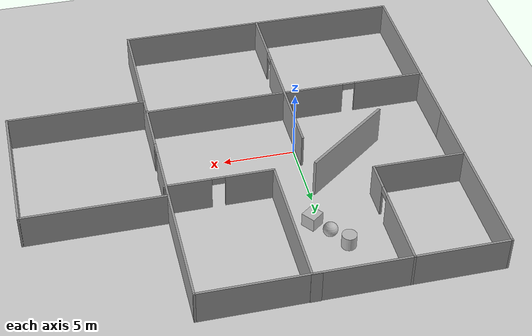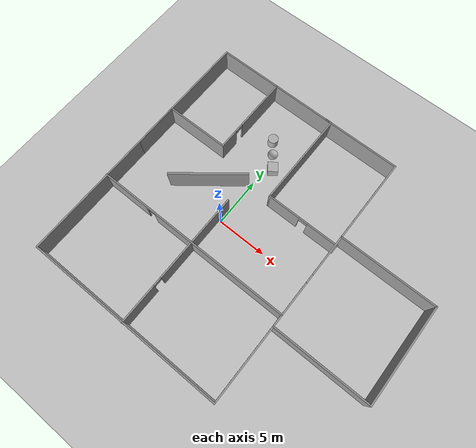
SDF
<sdf version="1.6">
 <world name="default">
  <light name="sun" type="directional">
   <pose>0 0 10 0 -0 0</pose>
   <diffuse>0.8 0.8 0.8 1</diffuse>
   <specular>0.1 0.1 0.1 1</specular>
   <attenuation>
    <range>1000</range>
    <constant>0.9</constant>
    <linear>0.01</linear>
    <quadratic>0.001</quadratic>
   </attenuation>
   <direction>-0.5 0.5 -1</direction>
  </light>
  <model name="ground_plane">
   <static>1</static>
   <link name="link">
    <collision name="collision">
     <geometry><plane><normal>0 0 1</normal><size>100 100</size></plane></geometry>
     <surface><friction><ode><mu>100</mu><mu2>50</mu2></ode></friction></surface>
    </collision>
    <visual name="visual">
     <cast_shadows>0</cast_shadows>
     <geometry><plane><normal>0 0 1</normal><size>100 100</size></plane></geometry>
     <material>
      <script><uri>file://media/materials/scripts/gazebo.material</uri><name>Gazebo/Grey</name></script>
     </material>
    </visual>
   </link>
  </model>
  <gravity>0 0 -9.8</gravity>
  <magnetic_field>6e-06 2.3e-05 -4.2e-05</magnetic_field>
  <atmosphere type="adiabatic"/>
  <physics name="default_physics" default="0" type="ode">
   <max_step_size>0.001</max_step_size>
   <real_time_factor>1</real_time_factor>
   <real_time_update_rate>1000</real_time_update_rate>
  </physics>
  <scene><ambient>0.4 0.4 0.4 1</ambient><background>0.7 0.7 0.7 1</background><shadows>1</shadows></scene>
  <spherical_coordinates>
   <surface_model>EARTH_WGS84</surface_model>
   <latitude_deg>0</latitude_deg>
   <longitude_deg>0</longitude_deg>
   <elevation>0</elevation>
   <heading_deg>0</heading_deg>
  </spherical_coordinates>
  <model name="textured_shapes">
   <pose>-0.307519 8.3938 0.5 0 -0 0.64384</pose>
   <link name="box">
    <pose>0 -1.5 0 0 -0 0</pose>
    <collision name="collision"><geometry><box><size>1 1 1</size></box></geometry></collision>
    <visual name="visual">
     <geometry><box><size>1 1 1</size></box></geometry>
     <material>
      <script>
       <uri>model://textured_shapes/materials/scripts</uri>
       <uri>model://textured_shapes/materials/textures</uri>
       <name>TexturedShape/Squares</name>
      </script>
     </material>
    </visual>
    <inertial>
     <inertia><ixx>1</ixx><ixy>0</ixy><ixz>0</ixz><iyy>1</iyy><iyz>0</iyz><izz>1</izz></inertia>
     <mass>1</mass>
    </inertial>
   </link>
   <link name="sphere">
    <collision name="collision"><geometry><sphere><radius>0.5</radius></sphere></geometry></collision>
    <visual name="visual">
     <geometry><sphere><radius>0.5</radius></sphere></geometry>
     <material>
      <script>
       <uri>model://textured_shapes/materials/scripts</uri>
       <uri>model://textured_shapes/materials/textures</uri>
       <name>TexturedShape/Squares</name>
      </script>
     </material>
    </visual>
    <inertial>
     <inertia><ixx>1</ixx><ixy>0</ixy><ixz>0</ixz><iyy>1</iyy><iyz>0</iyz><izz>1</izz></inertia>
     <mass>1</mass>
    </inertial>
   </link>
   <link name="cylinder">
    <pose>0 1.5 0 0 -0 0</pose>
    <collision name="collision">
     <geometry><cylinder><radius>0.5</radius><length>1</length></cylinder></geometry>
    </collision>
    <visual name="visual">
     <geometry><cylinder><radius>0.5</radius><length>1</length></cylinder></geometry>
     <material>
      <script>
       <uri>model://textured_shapes/materials/scripts</uri>
       <uri>model://textured_shapes/materials/textures</uri>
       <name>TexturedShape/Squares</name>
      </script>
     </material>
    </visual>
    <inertial>
     <inertia><ixx>1</ixx><ixy>0</ixy><ixz>0</ixz><iyy>1</iyy><iyz>0</iyz><izz>1</izz></inertia>
     <mass>1</mass>
    </inertial>
   </link>
  </model>
  <model name="grey_wall">
   <static>1</static>
   <link name="link">
    <pose>0 0 1.4 0 -0 0</pose>
    <collision name="collision"><geometry><box><size>7.5 0.2 2.8</size></box></geometry></collision>
    <visual name="visual">
     <cast_shadows>0</cast_shadows>
     <geometry><box><size>7.5 0.2 2.8</size></box></geometry>
     <material>
      <script>
       <uri>model://grey_wall/materials/scripts</uri>
       <uri>model://grey_wall/materials/textures</uri>
       <name>vrc/grey_wall</name>
      </script>
     </material>
    </visual>
   </link>
   <pose>-3.18514 2.23987 4e-06 0.01417 -0.022146 0.663578</pose>
  </model>
  <model name="White_walls_and_doors">
   <pose>4.437 0.6178 0 0 -0 0</pose>
   <link name="Wall_18">
    <collision name="Wall_18_Collision">
     <geometry><box><size>20.25 0.15 2.5</size></box></geometry>
     <pose>0 0 1.25 0 -0 0</pose>
    </collision>
    <visual name="Wall_18_Visual">
     <pose>0 0 1.25 0 -0 0</pose>
     <geometry><box><size>20.25 0.15 2.5</size></box></geometry>
     <material>
      <script><uri>file://media/materials/scripts/gazebo.material</uri><name>Gazebo/Grey</name></script>
      <ambient>1 1 1 1</ambient>
     </material>
    </visual>
    <pose>-4.80227 -13.0434 0 0 -0 3.14159</pose>
   </link>
   <link name="Wall_19">
    <collision name="Wall_19_Collision">
     <geometry><box><size>26.25 0.15 2.5</size></box></geometry>
     <pose>0 0 1.25 0 -0 0</pose>
    </collision>
    <visual name="Wall_19_Visual">
     <pose>0 0 1.25 0 -0 0</pose>
     <geometry><box><size>26.25 0.15 2.5</size></box></geometry>
     <material>
      <script><uri>file://media/materials/scripts/gazebo.material</uri><name>Gazebo/Grey</name></script>
      <ambient>1 1 1 1</ambient>
     </material>
    </visual>
    <pose>-14.8523 0.006615 0 0 -0 1.5708</pose>
   </link>
   <link name="Wall_20">
    <collision name="Wall_20_Collision">
     <geometry><box><size>6.5 0.15 2.5</size></box></geometry>
     <pose>0 0 1.25 0 -0 0</pose>
    </collision>
    <visual name="Wall_20_Visual">
     <pose>0 0 1.25 0 -0 0</pose>
     <geometry><box><size>6.5 0.15 2.5</size></box></geometry>
     <material>
      <script><uri>file://media/materials/scripts/gazebo.material</uri><name>Gazebo/Grey</name></script>
      <ambient>1 1 1 1</ambient>
     </material>
    </visual>
    <pose>-11.6773 13.0566 0 0 -0 0</pose>
   </link>
   <link name="Wall_21">
    <pose>-8.50227 8.88162 0 0 0 -1.5708</pose>
    <visual name="Wall_21_Visual_0">
     <pose>-1.47112 0 1.25 0 -0 0</pose>
     <geometry><box><size>5.55776 0.15 2.5</size></box></geometry>
     <material>
      <script><uri>file://media/materials/scripts/gazebo.material</uri><name>Gazebo/Grey</name></script>
      <ambient>1 1 1 1</ambient>
     </material>
    </visual>
    <collision name="Wall_21_Collision_0">
     <geometry><box><size>5.55776 0.15 2.5</size></box></geometry>
     <pose>-1.47112 0 1.25 0 -0 0</pose>
    </collision>
    <visual name="Wall_21_Visual_1">
     <pose>3.22888 0 1.25 0 -0 0</pose>
     <geometry><box><size>2.04224 0.15 2.5</size></box></geometry>
     <material>
      <script><uri>file://media/materials/scripts/gazebo.material</uri><name>Gazebo/Grey</name></script>
      <ambient>1 1 1 1</ambient>
     </material>
    </visual>
    <collision name="Wall_21_Collision_1">
     <geometry><box><size>2.04224 0.15 2.5</size></box></geometry>
     <pose>3.22888 0 1.25 0 -0 0</pose>
    </collision>
    <visual name="Wall_21_Visual_2">
     <pose>1.75776 0 2.25 0 -0 0</pose>
     <geometry><box><size>0.9 0.15 0.5</size></box></geometry>
     <material>
      <script><uri>file://media/materials/scripts/gazebo.material</uri><name>Gazebo/Grey</name></script>
      <ambient>1 1 1 1</ambient>
     </material>
    </visual>
    <collision name="Wall_21_Collision_2">
     <geometry><box><size>0.9 0.15 0.5</size></box></geometry>
     <pose>1.75776 0 2.25 0 -0 0</pose>
    </collision>
   </link>
   <link name="Wall_22">
    <collision name="Wall_22_Collision">
     <geometry><box><size>6.5 0.15 2.5</size></box></geometry>
     <pose>0 0 1.25 0 -0 0</pose>
    </collision>
    <visual name="Wall_22_Visual">
     <pose>0 0 1.25 0 -0 0</pose>
     <geometry><box><size>6.5 0.15 2.5</size></box></geometry>
     <material>
      <script><uri>file://media/materials/scripts/gazebo.material</uri><name>Gazebo/Grey</name></script>
      <ambient>1 1 1 1</ambient>
     </material>
    </visual>
    <pose>-11.6773 4.70662 0 0 -0 3.14159</pose>
   </link>
   <link name="Wall_23">
    <collision name="Wall_23_Collision">
     <geometry><box><size>9 0.15 2.5</size></box></geometry>
     <pose>0 0 1.25 0 -0 0</pose>
    </collision>
    <visual name="Wall_23_Visual">
     <pose>0 0 1.25 0 -0 0</pose>
     <geometry><box><size>9 0.15 2.5</size></box></geometry>
     <material>
      <script><uri>file://media/materials/scripts/gazebo.material</uri><name>Gazebo/Grey</name></script>
      <ambient>1 1 1 1</ambient>
     </material>
    </visual>
    <pose>-14.8523 0.281615 0 0 0 -1.5708</pose>
   </link>
   <link name="Wall_31">
    <pose>5.24773 0.006615 0 0 -0 1.5708</pose>
    <visual name="Wall_31_Visual_0">
     <pose>-6.97193 0 1.25 0 -0 0</pose>
     <geometry><box><size>12.3061 0.15 2.5</size></box></geometry>
     <material>
      <script><uri>file://media/materials/scripts/gazebo.material</uri><name>Gazebo/Grey</name></script>
      <ambient>1 1 1 1</ambient>
     </material>
    </visual>
    <collision name="Wall_31_Collision_0">
     <geometry><box><size>12.3061 0.15 2.5</size></box></geometry>
     <pose>-6.97193 0 1.25 0 -0 0</pose>
    </collision>
    <visual name="Wall_31_Visual_1">
     <pose>6.60307 0 1.25 0 -0 0</pose>
     <geometry><box><size>13.0439 0.15 2.5</size></box></geometry>
     <material>
      <script><uri>file://media/materials/scripts/gazebo.material</uri><name>Gazebo/Grey</name></script>
      <ambient>1 1 1 1</ambient>
     </material>
    </visual>
    <collision name="Wall_31_Collision_1">
     <geometry><box><size>13.0439 0.15 2.5</size></box></geometry>
     <pose>6.60307 0 1.25 0 -0 0</pose>
    </collision>
    <visual name="Wall_31_Visual_2">
     <pose>-0.368859 0 2.25 0 -0 0</pose>
     <geometry><box><size>0.9 0.15 0.5</size></box></geometry>
     <material>
      <script><uri>file://media/materials/scripts/gazebo.material</uri><name>Gazebo/Grey</name></script>
      <ambient>1 1 1 1</ambient>
     </material>
    </visual>
    <collision name="Wall_31_Collision_2">
     <geometry><box><size>0.9 0.15 0.5</size></box></geometry>
     <pose>-0.368859 0 2.25 0 -0 0</pose>
    </collision>
   </link>
   <link name="Wall_33">
    <collision name="Wall_33_Collision">
     <geometry><box><size>13.9 0.15 2.5</size></box></geometry>
     <pose>0 0 1.25 0 -0 0</pose>
    </collision>
    <visual name="Wall_33_Visual">
     <pose>0 0 1.25 0 -0 0</pose>
     <geometry><box><size>13.9 0.15 2.5</size></box></geometry>
     <material>
      <script><uri>file://media/materials/scripts/gazebo.material</uri><name>Gazebo/Grey</name></script>
      <ambient>1 1 1 1</ambient>
     </material>
    </visual>
    <pose>-1.62727 13.0566 0 0 -0 0</pose>
   </link>
   <link name="Wall_35">
    <collision name="Wall_35_Collision">
     <geometry><box><size>0.75 0.15 2.5</size></box></geometry>
     <pose>0 0 1.25 0 -0 0</pose>
    </collision>
    <visual name="Wall_35_Visual">
     <pose>0 0 1.25 0 -0 0</pose>
     <geometry><box><size>0.75 0.15 2.5</size></box></geometry>
     <material>
      <script><uri>file://media/materials/scripts/gazebo.material</uri><name>Gazebo/Grey</name></script>
      <ambient>1 1 1 1</ambient>
     </material>
    </visual>
    <pose>-2.2932 13.0776 0 0 -0 0</pose>
   </link>
   <link name="Wall_36">
    <collision name="Wall_36_Collision">
     <geometry><box><size>9.75 0.15 2.5</size></box></geometry>
     <pose>0 0 1.25 0 -0 0</pose>
    </collision>
    <visual name="Wall_36_Visual">
     <pose>0 0 1.25 0 -0 0</pose>
     <geometry><box><size>9.75 0.15 2.5</size></box></geometry>
     <material>
      <script><uri>file://media/materials/scripts/gazebo.material</uri><name>Gazebo/Grey</name></script>
      <ambient>1 1 1 1</ambient>
     </material>
    </visual>
    <pose>-1.9932 8.27759 0 0 0 -1.5708</pose>
   </link>
   <link name="Wall_37">
    <pose>1.6818 3.47759 0 0 -0 0</pose>
    <visual name="Wall_37_Visual_0">
     <pose>-2.06159 0 1.25 0 -0 0</pose>
     <geometry><box><size>3.37682 0.15 2.5</size></box></geometry>
     <material>
      <script><uri>file://media/materials/scripts/gazebo.material</uri><name>Gazebo/Grey</name></script>
      <ambient>1 1 1 1</ambient>
     </material>
    </visual>
    <collision name="Wall_37_Collision_0">
     <geometry><box><size>3.37682 0.15 2.5</size></box></geometry>
     <pose>-2.06159 0 1.25 0 -0 0</pose>
    </collision>
    <visual name="Wall_37_Visual_1">
     <pose>2.13841 0 1.25 0 -0 0</pose>
     <geometry><box><size>3.22318 0.15 2.5</size></box></geometry>
     <material>
      <script><uri>file://media/materials/scripts/gazebo.material</uri><name>Gazebo/Grey</name></script>
      <ambient>1 1 1 1</ambient>
     </material>
    </visual>
    <collision name="Wall_37_Collision_1">
     <geometry><box><size>3.22318 0.15 2.5</size></box></geometry>
     <pose>2.13841 0 1.25 0 -0 0</pose>
    </collision>
    <visual name="Wall_37_Visual_2">
     <pose>0.076818 0 2.25 0 -0 0</pose>
     <geometry><box><size>0.9 0.15 0.5</size></box></geometry>
     <material>
      <script><uri>file://media/materials/scripts/gazebo.material</uri><name>Gazebo/Grey</name></script>
      <ambient>1 1 1 1</ambient>
     </material>
    </visual>
    <collision name="Wall_37_Collision_2">
     <geometry><box><size>0.9 0.15 0.5</size></box></geometry>
     <pose>0.076818 0 2.25 0 -0 0</pose>
    </collision>
   </link>
   <link name="Wall_39">
    <collision name="Wall_39_Collision">
     <geometry><box><size>9.75 0.15 2.5</size></box></geometry>
     <pose>0 0 1.25 0 -0 0</pose>
    </collision>
    <visual name="Wall_39_Visual">
     <pose>0 0 1.25 0 -0 0</pose>
     <geometry><box><size>9.75 0.15 2.5</size></box></geometry>
     <material>
      <script><uri>file://media/materials/scripts/gazebo.material</uri><name>Gazebo/Grey</name></script>
      <ambient>1 1 1 1</ambient>
     </material>
    </visual>
    <pose>10.0814 4.38553 0 0 -0 0</pose>
   </link>
   <link name="Wall_40">
    <collision name="Wall_40_Collision">
     <geometry><box><size>10 0.15 2.5</size></box></geometry>
     <pose>0 0 1.25 0 -0 0</pose>
    </collision>
    <visual name="Wall_40_Visual">
     <pose>0 0 1.25 0 -0 0</pose>
     <geometry><box><size>10 0.15 2.5</size></box></geometry>
     <material>
      <script><uri>file://media/materials/scripts/gazebo.material</uri><name>Gazebo/Grey</name></script>
      <ambient>1 1 1 1</ambient>
     </material>
    </visual>
    <pose>14.8814 -0.539473 0 0 0 -1.5708</pose>
   </link>
   <link name="Wall_41">
    <collision name="Wall_41_Collision">
     <geometry><box><size>9.75 0.15 2.5</size></box></geometry>
     <pose>0 0 1.25 0 -0 0</pose>
    </collision>
    <visual name="Wall_41_Visual">
     <pose>0 0 1.25 0 -0 0</pose>
     <geometry><box><size>9.75 0.15 2.5</size></box></geometry>
     <material>
      <script><uri>file://media/materials/scripts/gazebo.material</uri><name>Gazebo/Grey</name></script>
      <ambient>1 1 1 1</ambient>
     </material>
    </visual>
    <pose>10.0814 -5.46447 0 0 -0 3.14159</pose>
   </link>
   <link name="Wall_43">
    <collision name="Wall_43_Collision">
     <geometry><box><size>0.25 0.15 2.5</size></box></geometry>
     <pose>0 0 1.25 0 -0 0</pose>
    </collision>
    <visual name="Wall_43_Visual">
     <pose>0 0 1.25 0 -0 0</pose>
     <geometry><box><size>0.25 0.15 2.5</size></box></geometry>
     <material>
      <script><uri>file://media/materials/scripts/gazebo.material</uri><name>Gazebo/Grey</name></script>
      <ambient>1 1 1 1</ambient>
     </material>
    </visual>
    <pose>5.21856 -4.31567 0 0 -0 1.5708</pose>
   </link>
   <link name="Wall_44">
    <pose>-4.83144 -4.26567 0 0 -0 3.14159</pose>
    <visual name="Wall_44_Visual_0">
     <pose>-2.9883 0 1.25 0 -0 0</pose>
     <geometry><box><size>14.2734 0.15 2.5</size></box></geometry>
     <material>
      <script><uri>file://media/materials/scripts/gazebo.material</uri><name>Gazebo/Grey</name></script>
      <ambient>1 1 1 1</ambient>
     </material>
    </visual>
    <collision name="Wall_44_Collision_0">
     <geometry><box><size>14.2734 0.15 2.5</size></box></geometry>
     <pose>-2.9883 0 1.25 0 -0 0</pose>
    </collision>
    <visual name="Wall_44_Visual_1">
     <pose>7.5867 0 1.25 0 -0 0</pose>
     <geometry><box><size>5.07659 0.15 2.5</size></box></geometry>
     <material>
      <script><uri>file://media/materials/scripts/gazebo.material</uri><name>Gazebo/Grey</name></script>
      <ambient>1 1 1 1</ambient>
     </material>
    </visual>
    <collision name="Wall_44_Collision_1">
     <geometry><box><size>5.07659 0.15 2.5</size></box></geometry>
     <pose>7.5867 0 1.25 0 -0 0</pose>
    </collision>
    <visual name="Wall_44_Visual_2">
     <pose>4.59841 0 2.25 0 -0 0</pose>
     <geometry><box><size>0.9 0.15 0.5</size></box></geometry>
     <material>
      <script><uri>file://media/materials/scripts/gazebo.material</uri><name>Gazebo/Grey</name></script>
      <ambient>1 1 1 1</ambient>
     </material>
    </visual>
    <collision name="Wall_44_Collision_2">
     <geometry><box><size>0.9 0.15 0.5</size></box></geometry>
     <pose>4.59841 0 2.25 0 -0 0</pose>
    </collision>
   </link>
   <link name="Wall_47">
    <pose>-4.66563 -6.15259 0 0 -0 1.5708</pose>
    <visual name="Wall_47_Visual_0">
     <pose>-5.00007 0 1.25 0 -0 0</pose>
     <geometry><box><size>3.99986 0.15 2.5</size></box></geometry>
     <material>
      <script><uri>file://media/materials/scripts/gazebo.material</uri><name>Gazebo/Grey</name></script>
      <ambient>1 1 1 1</ambient>
     </material>
    </visual>
    <collision name="Wall_47_Collision_0">
     <geometry><box><size>3.99986 0.15 2.5</size></box></geometry>
     <pose>-5.00007 0 1.25 0 -0 0</pose>
    </collision>
    <visual name="Wall_47_Visual_1">
     <pose>2.44993 0 1.25 0 -0 0</pose>
     <geometry><box><size>9.10014 0.15 2.5</size></box></geometry>
     <material>
      <script><uri>file://media/materials/scripts/gazebo.material</uri><name>Gazebo/Grey</name></script>
      <ambient>1 1 1 1</ambient>
     </material>
    </visual>
    <collision name="Wall_47_Collision_1">
     <geometry><box><size>9.10014 0.15 2.5</size></box></geometry>
     <pose>2.44993 0 1.25 0 -0 0</pose>
    </collision>
    <visual name="Wall_47_Visual_2">
     <pose>-2.55014 0 2.25 0 -0 0</pose>
     <geometry><box><size>0.9 0.15 0.5</size></box></geometry>
     <material>
      <script><uri>file://media/materials/scripts/gazebo.material</uri><name>Gazebo/Grey</name></script>
      <ambient>1 1 1 1</ambient>
     </material>
    </visual>
    <collision name="Wall_47_Collision_2">
     <geometry><box><size>0.9 0.15 0.5</size></box></geometry>
     <pose>-2.55014 0 2.25 0 -0 0</pose>
    </collision>
   </link>
   <static>1</static>
  </model>
 </world>
</sdf>
